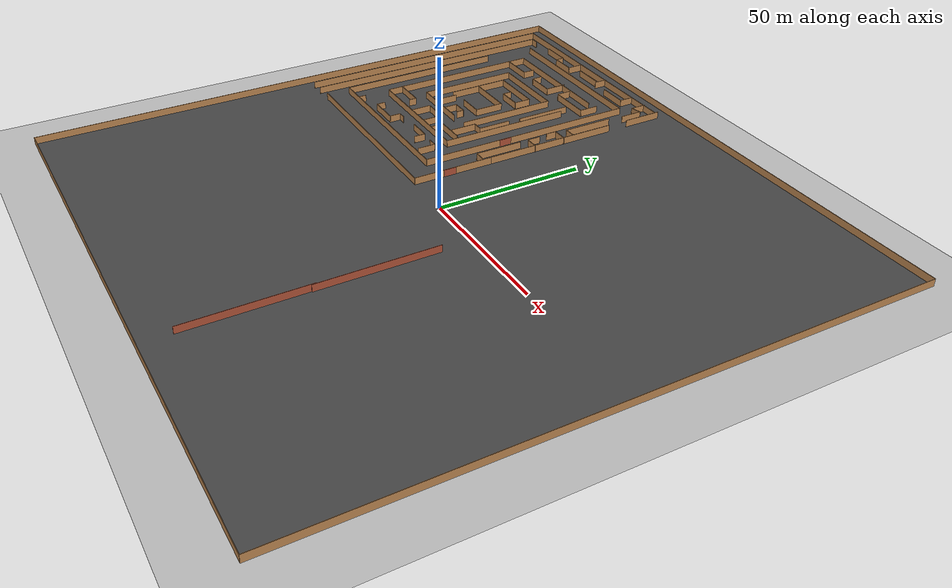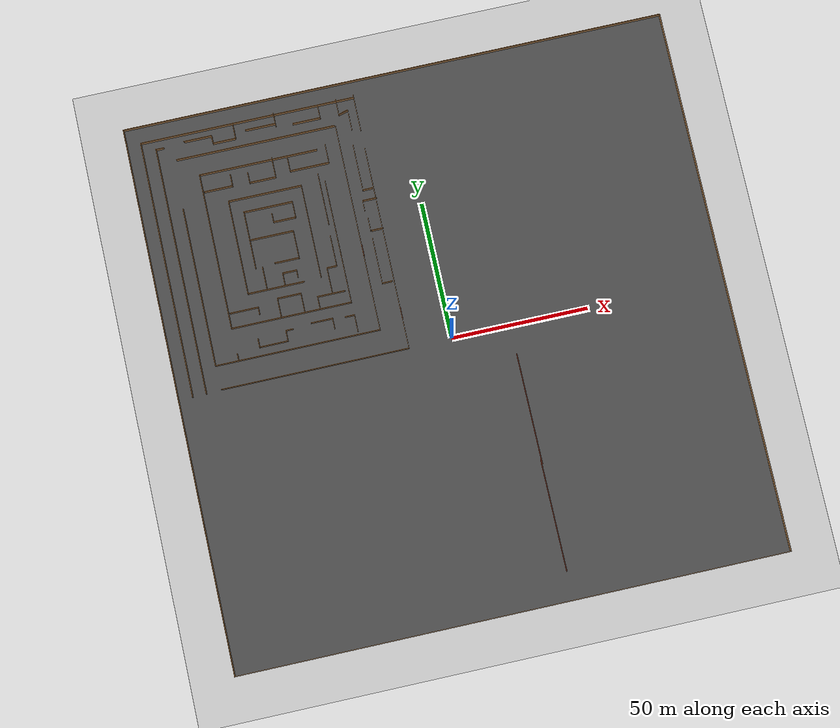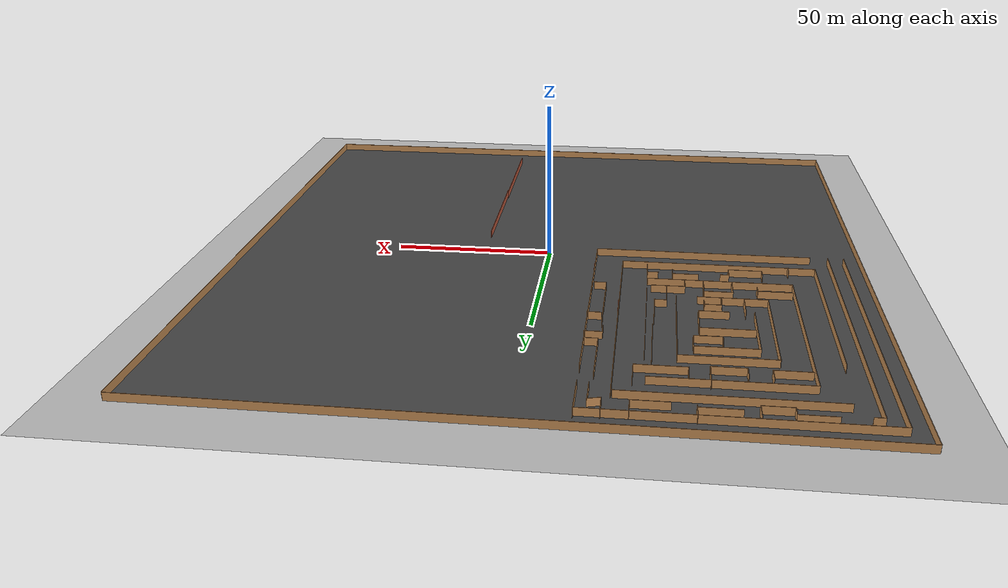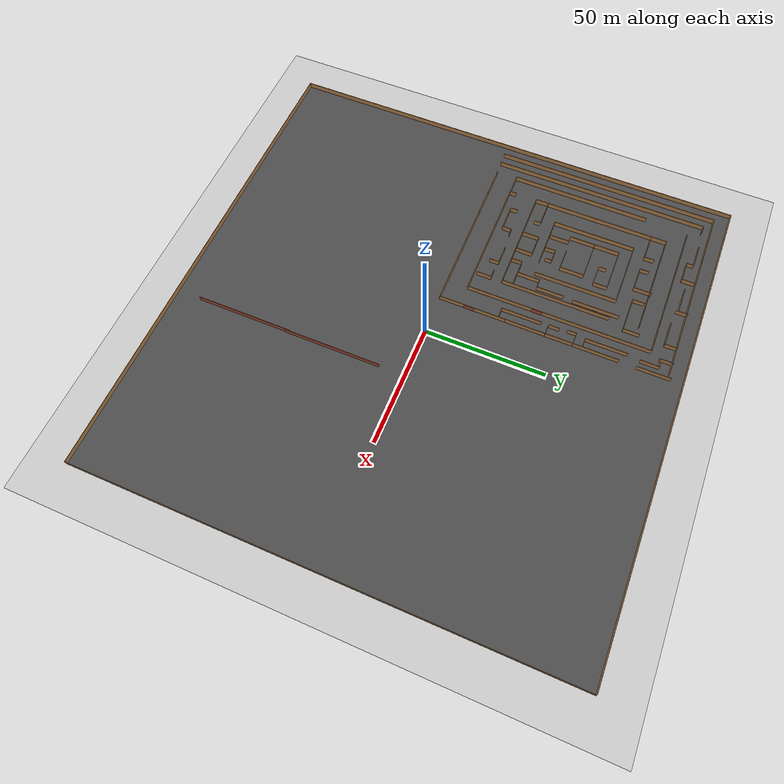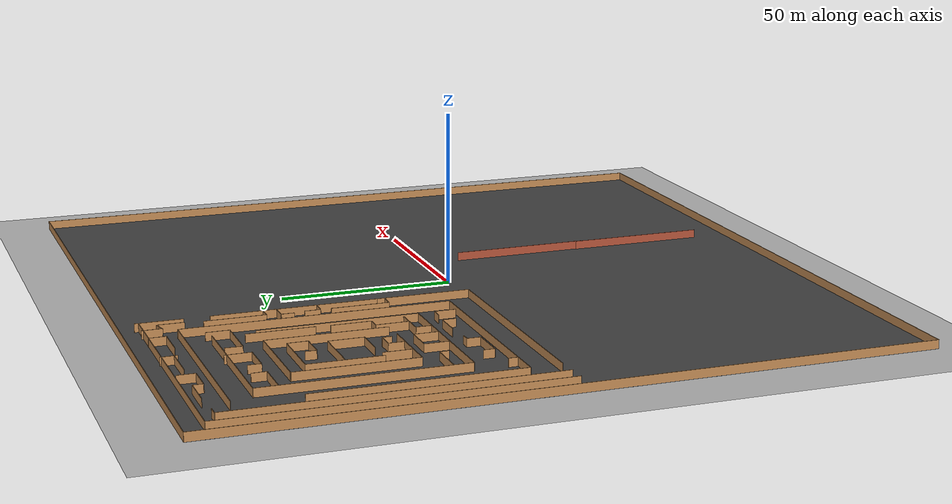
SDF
<sdf version="1.6">
 <world name="default">
  <model name="ground_plane">
   <static>1</static>
   <link name="link">
    <collision name="collision">
     <geometry><plane><normal>0 0 1</normal><size>200 200</size></plane></geometry>
     <surface><friction><ode><mu>100</mu><mu2>50</mu2></ode></friction></surface>
    </collision>
    <visual name="visual">
     <cast_shadows>0</cast_shadows>
     <geometry><plane><normal>0 0 1</normal><size>200 200</size></plane></geometry>
     <material>
      <script><uri>file://media/materials/scripts/gazebo.material</uri><name>Gazebo/Grey</name></script>
     </material>
    </visual>
   </link>
  </model>
  <model name="asphalt_plane">
   <static>1</static>
   <link name="link">
    <collision name="collision"><geometry><box><size>200 200 0.1</size></box></geometry></collision>
    <visual name="visual">
     <cast_shadows>0</cast_shadows>
     <geometry><box><size>200 200 0.1</size></box></geometry>
     <material>
      <script>
       <uri>model://asphalt_plane/materials/scripts</uri>
       <uri>model://asphalt_plane/materials/textures</uri>
       <name>vrc/asphalt</name>
      </script>
     </material>
    </visual>
   </link>
  </model>
  <model name="worlds_1_clone_1_clone">
   <pose>-15.7734 12.3225 0 0 -0 0</pose>
   <link name="Wall_0">
    <collision name="Wall_0_Collision">
     <geometry><box><size>4.25 0.15 2.5</size></box></geometry>
     <pose>0 0 1.25 0 -0 0</pose>
    </collision>
    <visual name="Wall_0_Visual">
     <pose>0 0 1.25 0 -0 0</pose>
     <geometry><box><size>4.25 0.15 2.5</size></box></geometry>
     <material>
      <script><uri>file://media/materials/scripts/gazebo.material</uri><name>Gazebo/Bricks</name></script>
      <ambient>1 1 1 1</ambient>
     </material>
    </visual>
    <pose>0 -0 0 0 -0 1.5708</pose>
   </link>
   <static>1</static>
  </model>
  <model name="longwall_clone_clone_3_clone_1">
   <pose>21.2782 -69.4847 0 0 0 -1.56602</pose>
   <link name="Wall_0">
    <collision name="Wall_0_Collision">
     <geometry><box><size>40.5 0.15 2.5</size></box></geometry>
     <pose>0 0 1.25 0 -0 0</pose>
    </collision>
    <visual name="Wall_0_Visual">
     <pose>0 0 1.25 0 -0 0</pose>
     <geometry><box><size>40.5 0.15 2.5</size></box></geometry>
     <material>
      <script><uri>file://media/materials/scripts/gazebo.material</uri><name>Gazebo/Bricks</name></script>
      <ambient>1 1 1 1</ambient>
     </material>
    </visual>
    <pose>1e-06 0 0 0 -0 0</pose>
   </link>
   <static>1</static>
  </model>
  <model name="longwall_clone_clone_3_clone_1_clone">
   <pose>21.3531 -30.8304 0 0 0 -1.56602</pose>
   <link name="Wall_0">
    <collision name="Wall_0_Collision">
     <geometry><box><size>40.5 0.15 2.5</size></box></geometry>
     <pose>0 0 1.25 0 -0 0</pose>
    </collision>
    <visual name="Wall_0_Visual">
     <pose>0 0 1.25 0 -0 0</pose>
     <geometry><box><size>40.5 0.15 2.5</size></box></geometry>
     <material>
      <script><uri>file://media/materials/scripts/gazebo.material</uri><name>Gazebo/Bricks</name></script>
      <ambient>1 1 1 1</ambient>
     </material>
    </visual>
    <pose>1e-06 0 0 0 -0 0</pose>
   </link>
   <static>1</static>
  </model>
  <model name="worlds_1_clone_1_clone_8_clone">
   <pose>-24.4187 38.1724 0 0 -0 0</pose>
   <link name="Wall_0">
    <collision name="Wall_0_Collision">
     <geometry><box><size>4.25 0.15 2.5</size></box></geometry>
     <pose>0 0 1.25 0 -0 0</pose>
    </collision>
    <visual name="Wall_0_Visual">
     <pose>0 0 1.25 0 -0 0</pose>
     <geometry><box><size>4.25 0.15 2.5</size></box></geometry>
     <material>
      <script><uri>file://media/materials/scripts/gazebo.material</uri><name>Gazebo/Bricks</name></script>
      <ambient>1 1 1 1</ambient>
     </material>
    </visual>
    <pose>0 -0 0 0 -0 1.5708</pose>
   </link>
   <static>1</static>
  </model>
  <model name="BuildingDefaultName">
   <pose>-55.2394 47.1146 0 0 -0 1.5708</pose>
   <link name="Wall_10">
    <collision name="Wall_10_Collision">
     <geometry><box><size>47.5 0.15 2.5</size></box></geometry>
     <pose>0 0 1.25 0 -0 0</pose>
    </collision>
    <visual name="Wall_10_Visual">
     <pose>0 0 1.25 0 -0 0</pose>
     <geometry><box><size>47.5 0.15 2.5</size></box></geometry>
     <material>
      <script><uri>file://media/materials/scripts/gazebo.material</uri><name>Gazebo/Wood</name></script>
      <ambient>1 1 1 1</ambient>
     </material>
    </visual>
    <pose>3.48259 -39.3572 0 0 -0 0</pose>
   </link>
   <link name="Wall_100">
    <collision name="Wall_100_Collision">
     <geometry><box><size>7 0.15 2.5</size></box></geometry>
     <pose>0 0 1.25 0 -0 0</pose>
    </collision>
    <visual name="Wall_100_Visual">
     <pose>0 0 1.25 0 -0 0</pose>
     <geometry><box><size>7 0.15 2.5</size></box></geometry>
     <material>
      <script><uri>file://media/materials/scripts/gazebo.material</uri><name>Gazebo/Wood</name></script>
      <ambient>1 1 1 1</ambient>
     </material>
    </visual>
    <pose>-23.0162 2.8764 0 0 -0 0</pose>
   </link>
   <link name="Wall_101">
    <collision name="Wall_101_Collision">
     <geometry><box><size>8.75 0.15 2.5</size></box></geometry>
     <pose>0 0 1.25 0 -0 0</pose>
    </collision>
    <visual name="Wall_101_Visual">
     <pose>0 0 1.25 0 -0 0</pose>
     <geometry><box><size>8.75 0.15 2.5</size></box></geometry>
     <material>
      <script><uri>file://media/materials/scripts/gazebo.material</uri><name>Gazebo/Wood</name></script>
      <ambient>1 1 1 1</ambient>
     </material>
    </visual>
    <pose>-19.5912 -1.4236 0 0 0 -1.5708</pose>
   </link>
   <link name="Wall_102">
    <collision name="Wall_102_Collision">
     <geometry><box><size>7 0.15 2.5</size></box></geometry>
     <pose>0 0 1.25 0 -0 0</pose>
    </collision>
    <visual name="Wall_102_Visual">
     <pose>0 0 1.25 0 -0 0</pose>
     <geometry><box><size>7 0.15 2.5</size></box></geometry>
     <material>
      <script><uri>file://media/materials/scripts/gazebo.material</uri><name>Gazebo/Wood</name></script>
      <ambient>1 1 1 1</ambient>
     </material>
    </visual>
    <pose>-23.0162 -5.7236 0 0 -0 3.14159</pose>
   </link>
   <link name="Wall_104">
    <collision name="Wall_104_Collision">
     <geometry><box><size>4.5 0.15 2.5</size></box></geometry>
     <pose>0 0 1.25 0 -0 0</pose>
    </collision>
    <visual name="Wall_104_Visual">
     <pose>0 0 1.25 0 -0 0</pose>
     <geometry><box><size>4.5 0.15 2.5</size></box></geometry>
     <material>
      <script><uri>file://media/materials/scripts/gazebo.material</uri><name>Gazebo/Wood</name></script>
      <ambient>1 1 1 1</ambient>
     </material>
    </visual>
    <pose>-24.2662 -11.3117 0 0 -0 0</pose>
   </link>
   <link name="Wall_105">
    <collision name="Wall_105_Collision">
     <geometry><box><size>10.25 0.15 2.5</size></box></geometry>
     <pose>0 0 1.25 0 -0 0</pose>
    </collision>
    <visual name="Wall_105_Visual">
     <pose>0 0 1.25 0 -0 0</pose>
     <geometry><box><size>10.25 0.15 2.5</size></box></geometry>
     <material>
      <script><uri>file://media/materials/scripts/gazebo.material</uri><name>Gazebo/Wood</name></script>
      <ambient>1 1 1 1</ambient>
     </material>
    </visual>
    <pose>-22.0912 -16.3617 0 0 0 -1.5708</pose>
   </link>
   <link name="Wall_107">
    <collision name="Wall_107_Collision">
     <geometry><box><size>9.5 0.15 2.5</size></box></geometry>
     <pose>0 0 1.25 0 -0 0</pose>
    </collision>
    <visual name="Wall_107_Visual">
     <pose>0 0 1.25 0 -0 0</pose>
     <geometry><box><size>9.5 0.15 2.5</size></box></geometry>
     <material>
      <script><uri>file://media/materials/scripts/gazebo.material</uri><name>Gazebo/Wood</name></script>
      <ambient>1 1 1 1</ambient>
     </material>
    </visual>
    <pose>-17.2857 -16.7879 0 0 -0 0</pose>
   </link>
   <link name="Wall_108">
    <collision name="Wall_108_Collision">
     <geometry><box><size>3.75 0.15 2.5</size></box></geometry>
     <pose>0 0 1.25 0 -0 0</pose>
    </collision>
    <visual name="Wall_108_Visual">
     <pose>0 0 1.25 0 -0 0</pose>
     <geometry><box><size>3.75 0.15 2.5</size></box></geometry>
     <material>
      <script><uri>file://media/materials/scripts/gazebo.material</uri><name>Gazebo/Wood</name></script>
      <ambient>1 1 1 1</ambient>
     </material>
    </visual>
    <pose>-12.6107 -18.5879 0 0 0 -1.5708</pose>
   </link>
   <link name="Wall_109">
    <collision name="Wall_109_Collision">
     <geometry><box><size>11.5 0.15 2.5</size></box></geometry>
     <pose>0 0 1.25 0 -0 0</pose>
    </collision>
    <visual name="Wall_109_Visual">
     <pose>0 0 1.25 0 -0 0</pose>
     <geometry><box><size>11.5 0.15 2.5</size></box></geometry>
     <material>
      <script><uri>file://media/materials/scripts/gazebo.material</uri><name>Gazebo/Wood</name></script>
      <ambient>1 1 1 1</ambient>
     </material>
    </visual>
    <pose>-6.93569 -20.3879 0 0 -0 0</pose>
   </link>
   <link name="Wall_111">
    <collision name="Wall_111_Collision">
     <geometry><box><size>19.25 0.15 2.5</size></box></geometry>
     <pose>0 0 1.25 0 -0 0</pose>
    </collision>
    <visual name="Wall_111_Visual">
     <pose>0 0 1.25 0 -0 0</pose>
     <geometry><box><size>19.25 0.15 2.5</size></box></geometry>
     <material>
      <script><uri>file://media/materials/scripts/gazebo.material</uri><name>Gazebo/Wood</name></script>
      <ambient>1 1 1 1</ambient>
     </material>
    </visual>
    <pose>12.4808 -20.7705 0 0 -0 0</pose>
   </link>
   <link name="Wall_113">
    <collision name="Wall_113_Collision">
     <geometry><box><size>5.75 0.15 2.5</size></box></geometry>
     <pose>0 0 1.25 0 -0 0</pose>
    </collision>
    <visual name="Wall_113_Visual">
     <pose>0 0 1.25 0 -0 0</pose>
     <geometry><box><size>5.75 0.15 2.5</size></box></geometry>
     <material>
      <script><uri>file://media/materials/scripts/gazebo.material</uri><name>Gazebo/Wood</name></script>
      <ambient>1 1 1 1</ambient>
     </material>
    </visual>
    <pose>44.4434 -32.778 0 0 -0 3.14159</pose>
   </link>
   <link name="Wall_114">
    <collision name="Wall_114_Collision">
     <geometry><box><size>3.75 0.15 2.5</size></box></geometry>
     <pose>0 0 1.25 0 -0 0</pose>
    </collision>
    <visual name="Wall_114_Visual">
     <pose>0 0 1.25 0 -0 0</pose>
     <geometry><box><size>3.75 0.15 2.5</size></box></geometry>
     <material>
      <script><uri>file://media/materials/scripts/gazebo.material</uri><name>Gazebo/Wood</name></script>
      <ambient>1 1 1 1</ambient>
     </material>
    </visual>
    <pose>42.1093 -34.5166 0 0 0 -1.309</pose>
   </link>
   <link name="Wall_115">
    <collision name="Wall_115_Collision">
     <geometry><box><size>7.75 0.15 2.5</size></box></geometry>
     <pose>0 0 1.25 0 -0 0</pose>
    </collision>
    <visual name="Wall_115_Visual">
     <pose>0 0 1.25 0 -0 0</pose>
     <geometry><box><size>7.75 0.15 2.5</size></box></geometry>
     <material>
      <script><uri>file://media/materials/scripts/gazebo.material</uri><name>Gazebo/Wood</name></script>
      <ambient>1 1 1 1</ambient>
     </material>
    </visual>
    <pose>38.7752 -36.2553 0 0 -0 3.14159</pose>
   </link>
   <link name="Wall_117">
    <collision name="Wall_117_Collision">
     <geometry><box><size>17.5 0.15 2.5</size></box></geometry>
     <pose>0 0 1.25 0 -0 0</pose>
    </collision>
    <visual name="Wall_117_Visual">
     <pose>0 0 1.25 0 -0 0</pose>
     <geometry><box><size>17.5 0.15 2.5</size></box></geometry>
     <material>
      <script><uri>file://media/materials/scripts/gazebo.material</uri><name>Gazebo/Wood</name></script>
      <ambient>1 1 1 1</ambient>
     </material>
    </visual>
    <pose>21.1543 -35.4279 0 0 -0 3.14159</pose>
   </link>
   <link name="Wall_118">
    <collision name="Wall_118_Collision">
     <geometry><box><size>3.75 0.15 2.5</size></box></geometry>
     <pose>0 0 1.25 0 -0 0</pose>
    </collision>
    <visual name="Wall_118_Visual">
     <pose>0 0 1.25 0 -0 0</pose>
     <geometry><box><size>3.75 0.15 2.5</size></box></geometry>
     <material>
      <script><uri>file://media/materials/scripts/gazebo.material</uri><name>Gazebo/Wood</name></script>
      <ambient>1 1 1 1</ambient>
     </material>
    </visual>
    <pose>12.4793 -37.2279 0 0 0 -1.5708</pose>
   </link>
   <link name="Wall_12">
    <collision name="Wall_12_Collision">
     <geometry><box><size>13.5 0.15 2.5</size></box></geometry>
     <pose>0 0 1.25 0 -0 0</pose>
    </collision>
    <visual name="Wall_12_Visual">
     <pose>0 0 1.25 0 -0 0</pose>
     <geometry><box><size>13.5 0.15 2.5</size></box></geometry>
     <material>
      <script><uri>file://media/materials/scripts/gazebo.material</uri><name>Gazebo/Wood</name></script>
      <ambient>1 1 1 1</ambient>
     </material>
    </visual>
    <pose>41.1826 -39.3572 0 0 -0 0</pose>
   </link>
   <link name="Wall_121">
    <collision name="Wall_121_Collision">
     <geometry><box><size>5.25 0.15 2.5</size></box></geometry>
     <pose>0 0 1.25 0 -0 0</pose>
    </collision>
    <visual name="Wall_121_Visual">
     <pose>0 0 1.25 0 -0 0</pose>
     <geometry><box><size>5.25 0.15 2.5</size></box></geometry>
     <material>
      <script><uri>file://media/materials/scripts/gazebo.material</uri><name>Gazebo/Wood</name></script>
      <ambient>1 1 1 1</ambient>
     </material>
    </visual>
    <pose>8.62951 -37.0422 0 0 -0 1.5708</pose>
   </link>
   <link name="Wall_122">
    <collision name="Wall_122_Collision">
     <geometry><box><size>3.75 0.15 2.5</size></box></geometry>
     <pose>0 0 1.25 0 -0 0</pose>
    </collision>
    <visual name="Wall_122_Visual">
     <pose>0 0 1.25 0 -0 0</pose>
     <geometry><box><size>3.75 0.15 2.5</size></box></geometry>
     <material>
      <script><uri>file://media/materials/scripts/gazebo.material</uri><name>Gazebo/Wood</name></script>
      <ambient>1 1 1 1</ambient>
     </material>
    </visual>
    <pose>6.82951 -34.4922 0 0 -0 3.14159</pose>
   </link>
   <link name="Wall_124">
    <collision name="Wall_124_Collision">
     <geometry><box><size>4.5 0.15 2.5</size></box></geometry>
     <pose>0 0 1.25 0 -0 0</pose>
    </collision>
    <visual name="Wall_124_Visual">
     <pose>0 0 1.25 0 -0 0</pose>
     <geometry><box><size>4.5 0.15 2.5</size></box></geometry>
     <material>
      <script><uri>file://media/materials/scripts/gazebo.material</uri><name>Gazebo/Wood</name></script>
      <ambient>1 1 1 1</ambient>
     </material>
    </visual>
    <pose>-0.359709 -35.0494 0 0 -0 3.14159</pose>
   </link>
   <link name="Wall_127">
    <collision name="Wall_127_Collision">
     <geometry><box><size>4.25 0.15 2.5</size></box></geometry>
     <pose>0 0 1.25 0 -0 0</pose>
    </collision>
    <visual name="Wall_127_Visual">
     <pose>0 0 1.25 0 -0 0</pose>
     <geometry><box><size>4.25 0.15 2.5</size></box></geometry>
     <material>
      <script><uri>file://media/materials/scripts/gazebo.material</uri><name>Gazebo/Wood</name></script>
      <ambient>1 1 1 1</ambient>
     </material>
    </visual>
    <pose>-2.72752 -37.4779 0 0 0 -1.5708</pose>
   </link>
   <link name="Wall_130">
    <collision name="Wall_130_Collision">
     <geometry><box><size>16.75 0.15 2.5</size></box></geometry>
     <pose>0 0 1.25 0 -0 0</pose>
    </collision>
    <visual name="Wall_130_Visual">
     <pose>0 0 1.25 0 -0 0</pose>
     <geometry><box><size>16.75 0.15 2.5</size></box></geometry>
     <material>
      <script><uri>file://media/materials/scripts/gazebo.material</uri><name>Gazebo/Wood</name></script>
      <ambient>1 1 1 1</ambient>
     </material>
    </visual>
    <pose>-14.0561 -35.0494 0 0 -0 3.14159</pose>
   </link>
   <link name="Wall_131">
    <collision name="Wall_131_Collision">
     <geometry><box><size>3.75 0.15 2.5</size></box></geometry>
     <pose>0 0 1.25 0 -0 0</pose>
    </collision>
    <visual name="Wall_131_Visual">
     <pose>0 0 1.25 0 -0 0</pose>
     <geometry><box><size>3.75 0.15 2.5</size></box></geometry>
     <material>
      <script><uri>file://media/materials/scripts/gazebo.material</uri><name>Gazebo/Wood</name></script>
      <ambient>1 1 1 1</ambient>
     </material>
    </visual>
    <pose>-22.3561 -36.8494 0 0 0 -1.5708</pose>
   </link>
   <link name="Wall_133">
    <collision name="Wall_133_Collision">
     <geometry><box><size>91.25 0.15 2.5</size></box></geometry>
     <pose>0 0 1.25 0 -0 0</pose>
    </collision>
    <visual name="Wall_133_Visual">
     <pose>0 0 1.25 0 -0 0</pose>
     <geometry><box><size>91.25 0.15 2.5</size></box></geometry>
     <material>
      <script><uri>file://media/materials/scripts/gazebo.material</uri><name>Gazebo/Wood</name></script>
      <ambient>1 1 1 1</ambient>
     </material>
    </visual>
    <pose>-2.22711 34.6071 0 0 -0 0</pose>
   </link>
   <link name="Wall_134">
    <collision name="Wall_134_Collision">
     <geometry><box><size>3 0.15 2.5</size></box></geometry>
     <pose>0 0 1.25 0 -0 0</pose>
    </collision>
    <visual name="Wall_134_Visual">
     <pose>0 0 1.25 0 -0 0</pose>
     <geometry><box><size>3 0.15 2.5</size></box></geometry>
     <material>
      <script><uri>file://media/materials/scripts/gazebo.material</uri><name>Gazebo/Wood</name></script>
      <ambient>1 1 1 1</ambient>
     </material>
    </visual>
    <pose>43.3229 33.1821 0 0 0 -1.5708</pose>
   </link>
   <link name="Wall_14">
    <collision name="Wall_14_Collision">
     <geometry><box><size>28 0.15 2.5</size></box></geometry>
     <pose>0 0 1.25 0 -0 0</pose>
    </collision>
    <visual name="Wall_14_Visual">
     <pose>0 0 1.25 0 -0 0</pose>
     <geometry><box><size>28 0.15 2.5</size></box></geometry>
     <material>
      <script><uri>file://media/materials/scripts/gazebo.material</uri><name>Gazebo/Wood</name></script>
      <ambient>1 1 1 1</ambient>
     </material>
    </visual>
    <pose>-33.4681 -39.3572 0 0 -0 3.14159</pose>
   </link>
   <link name="Wall_15">
    <collision name="Wall_15_Collision">
     <geometry><box><size>68.5 0.15 2.5</size></box></geometry>
     <pose>0 0 1.25 0 -0 0</pose>
    </collision>
    <visual name="Wall_15_Visual">
     <pose>0 0 1.25 0 -0 0</pose>
     <geometry><box><size>68.5 0.15 2.5</size></box></geometry>
     <material>
      <script><uri>file://media/materials/scripts/gazebo.material</uri><name>Gazebo/Wood</name></script>
      <ambient>1 1 1 1</ambient>
     </material>
    </visual>
    <pose>-47.3931 -5.18218 0 0 -0 1.5708</pose>
   </link>
   <link name="Wall_18">
    <collision name="Wall_18_Collision">
     <geometry><box><size>94.75 0.15 2.5</size></box></geometry>
     <pose>0 0 1.25 0 -0 0</pose>
    </collision>
    <visual name="Wall_18_Visual">
     <pose>0 0 1.25 0 -0 0</pose>
     <geometry><box><size>94.75 0.15 2.5</size></box></geometry>
     <material>
      <script><uri>file://media/materials/scripts/gazebo.material</uri><name>Gazebo/Wood</name></script>
      <ambient>1 1 1 1</ambient>
     </material>
    </visual>
    <pose>-0.557591 39.5922 0 0 -0 0</pose>
   </link>
   <link name="Wall_19">
    <collision name="Wall_19_Collision">
     <geometry><box><size>79 0.15 2.5</size></box></geometry>
     <pose>0 0 1.25 0 -0 0</pose>
    </collision>
    <visual name="Wall_19_Visual">
     <pose>0 0 1.25 0 -0 0</pose>
     <geometry><box><size>79 0.15 2.5</size></box></geometry>
     <material>
      <script><uri>file://media/materials/scripts/gazebo.material</uri><name>Gazebo/Wood</name></script>
      <ambient>1 1 1 1</ambient>
     </material>
    </visual>
    <pose>46.7424 0.167188 0 0 0 -1.5708</pose>
   </link>
   <link name="Wall_21">
    <collision name="Wall_21_Collision">
     <geometry><box><size>34.5 0.15 2.5</size></box></geometry>
     <pose>0 0 1.25 0 -0 0</pose>
    </collision>
    <visual name="Wall_21_Visual">
     <pose>0 0 1.25 0 -0 0</pose>
     <geometry><box><size>34.5 0.15 2.5</size></box></geometry>
     <material>
      <script><uri>file://media/materials/scripts/gazebo.material</uri><name>Gazebo/Wood</name></script>
      <ambient>1 1 1 1</ambient>
     </material>
    </visual>
    <pose>1.77247 -14.0276 0 0 -0 0</pose>
   </link>
   <link name="Wall_22">
    <collision name="Wall_22_Collision">
     <geometry><box><size>27 0.15 2.5</size></box></geometry>
     <pose>0 0 1.25 0 -0 0</pose>
    </collision>
    <visual name="Wall_22_Visual">
     <pose>0 0 1.25 0 -0 0</pose>
     <geometry><box><size>27 0.15 2.5</size></box></geometry>
     <material>
      <script><uri>file://media/materials/scripts/gazebo.material</uri><name>Gazebo/Wood</name></script>
      <ambient>1 1 1 1</ambient>
     </material>
    </visual>
    <pose>18.9475 -0.602588 0 0 -0 1.5708</pose>
   </link>
   <link name="Wall_23">
    <collision name="Wall_23_Collision">
     <geometry><box><size>34.75 0.15 2.5</size></box></geometry>
     <pose>0 0 1.25 0 -0 0</pose>
    </collision>
    <visual name="Wall_23_Visual">
     <pose>0 0 1.25 0 -0 0</pose>
     <geometry><box><size>34.75 0.15 2.5</size></box></geometry>
     <material>
      <script><uri>file://media/materials/scripts/gazebo.material</uri><name>Gazebo/Wood</name></script>
      <ambient>1 1 1 1</ambient>
     </material>
    </visual>
    <pose>1.64747 12.8224 0 0 -0 3.14159</pose>
   </link>
   <link name="Wall_24">
    <collision name="Wall_24_Collision">
     <geometry><box><size>20.75 0.15 2.5</size></box></geometry>
     <pose>0 0 1.25 0 -0 0</pose>
    </collision>
    <visual name="Wall_24_Visual">
     <pose>0 0 1.25 0 -0 0</pose>
     <geometry><box><size>20.75 0.15 2.5</size></box></geometry>
     <material>
      <script><uri>file://media/materials/scripts/gazebo.material</uri><name>Gazebo/Wood</name></script>
      <ambient>1 1 1 1</ambient>
     </material>
    </visual>
    <pose>-15.6525 2.52241 0 0 0 -1.5708</pose>
   </link>
   <link name="Wall_26">
    <collision name="Wall_26_Collision">
     <geometry><box><size>45.5 0.15 2.5</size></box></geometry>
     <pose>0 0 1.25 0 -0 0</pose>
    </collision>
    <visual name="Wall_26_Visual">
     <pose>0 0 1.25 0 -0 0</pose>
     <geometry><box><size>45.5 0.15 2.5</size></box></geometry>
     <material>
      <script><uri>file://media/materials/scripts/gazebo.material</uri><name>Gazebo/Wood</name></script>
      <ambient>1 1 1 1</ambient>
     </material>
    </visual>
    <pose>-4.00641 -22.7347 0 0 -0 3.14159</pose>
   </link>
   <link name="Wall_27">
    <collision name="Wall_27_Collision">
     <geometry><box><size>44 0.15 2.5</size></box></geometry>
     <pose>0 0 1.25 0 -0 0</pose>
    </collision>
    <visual name="Wall_27_Visual">
     <pose>0 0 1.25 0 -0 0</pose>
     <geometry><box><size>44 0.15 2.5</size></box></geometry>
     <material>
      <script><uri>file://media/materials/scripts/gazebo.material</uri><name>Gazebo/Wood</name></script>
      <ambient>1 1 1 1</ambient>
     </material>
    </visual>
    <pose>-26.6814 -0.809651 0 0 -0 1.5708</pose>
   </link>
   <link name="Wall_28">
    <collision name="Wall_28_Collision">
     <geometry><box><size>57.5 0.15 2.5</size></box></geometry>
     <pose>0 0 1.25 0 -0 0</pose>
    </collision>
    <visual name="Wall_28_Visual">
     <pose>0 0 1.25 0 -0 0</pose>
     <geometry><box><size>57.5 0.15 2.5</size></box></geometry>
     <material>
      <script><uri>file://media/materials/scripts/gazebo.material</uri><name>Gazebo/Wood</name></script>
      <ambient>1 1 1 1</ambient>
     </material>
    </visual>
    <pose>1.99358 21.1153 0 0 -0 0</pose>
   </link>
   <link name="Wall_29">
    <collision name="Wall_29_Collision">
     <geometry><box><size>43.5 0.15 2.5</size></box></geometry>
     <pose>0 0 1.25 0 -0 0</pose>
    </collision>
    <visual name="Wall_29_Visual">
     <pose>0 0 1.25 0 -0 0</pose>
     <geometry><box><size>43.5 0.15 2.5</size></box></geometry>
     <material>
      <script><uri>file://media/materials/scripts/gazebo.material</uri><name>Gazebo/Wood</name></script>
      <ambient>1 1 1 1</ambient>
     </material>
    </visual>
    <pose>30.6686 -0.559651 0 0 0 -1.5708</pose>
   </link>
   <link name="Wall_31">
    <collision name="Wall_31_Collision">
     <geometry><box><size>76.75 0.15 2.5</size></box></geometry>
     <pose>0 0 1.25 0 -0 0</pose>
    </collision>
    <visual name="Wall_31_Visual">
     <pose>0 0 1.25 0 -0 0</pose>
     <geometry><box><size>76.75 0.15 2.5</size></box></geometry>
     <material>
      <script><uri>file://media/materials/scripts/gazebo.material</uri><name>Gazebo/Wood</name></script>
      <ambient>1 1 1 1</ambient>
     </material>
    </visual>
    <pose>-0.324449 -30.6846 0 0 -0 3.14159</pose>
   </link>
   <link name="Wall_32">
    <collision name="Wall_32_Collision">
     <geometry><box><size>60.25 0.15 2.5</size></box></geometry>
     <pose>0 0 1.25 0 -0 0</pose>
    </collision>
    <visual name="Wall_32_Visual">
     <pose>0 0 1.25 0 -0 0</pose>
     <geometry><box><size>60.25 0.15 2.5</size></box></geometry>
     <material>
      <script><uri>file://media/materials/scripts/gazebo.material</uri><name>Gazebo/Wood</name></script>
      <ambient>1 1 1 1</ambient>
     </material>
    </visual>
    <pose>-38.6244 -0.634578 0 0 -0 1.5708</pose>
   </link>
   <link name="Wall_33">
    <collision name="Wall_33_Collision">
     <geometry><box><size>58.5 0.15 2.5</size></box></geometry>
     <pose>0 0 1.25 0 -0 0</pose>
    </collision>
    <visual name="Wall_33_Visual">
     <pose>0 0 1.25 0 -0 0</pose>
     <geometry><box><size>58.5 0.15 2.5</size></box></geometry>
     <material>
      <script><uri>file://media/materials/scripts/gazebo.material</uri><name>Gazebo/Wood</name></script>
      <ambient>1 1 1 1</ambient>
     </material>
    </visual>
    <pose>-9.44945 29.4154 0 0 -0 0</pose>
   </link>
   <link name="Wall_36">
    <collision name="Wall_36_Collision">
     <geometry><box><size>58.5 0.15 2.5</size></box></geometry>
     <pose>0 0 1.25 0 -0 0</pose>
    </collision>
    <visual name="Wall_36_Visual">
     <pose>0 0 1.25 0 -0 0</pose>
     <geometry><box><size>58.5 0.15 2.5</size></box></geometry>
     <material>
      <script><uri>file://media/materials/scripts/gazebo.material</uri><name>Gazebo/Wood</name></script>
      <ambient>1 1 1 1</ambient>
     </material>
    </visual>
    <pose>37.9755 -1.13101 0 0 -0 1.5708</pose>
   </link>
   <link name="Wall_38">
    <collision name="Wall_38_Collision">
     <geometry><box><size>8 0.15 2.5</size></box></geometry>
     <pose>0 0 1.25 0 -0 0</pose>
    </collision>
    <visual name="Wall_38_Visual">
     <pose>0 0 1.25 0 -0 0</pose>
     <geometry><box><size>8 0.15 2.5</size></box></geometry>
     <material>
      <script><uri>file://media/materials/scripts/gazebo.material</uri><name>Gazebo/Wood</name></script>
      <ambient>1 1 1 1</ambient>
     </material>
    </visual>
    <pose>-11.2696 5.78374 0 0 -0 0</pose>
   </link>
   <link name="Wall_40">
    <collision name="Wall_40_Collision">
     <geometry><box><size>21.25 0.15 2.5</size></box></geometry>
     <pose>0 0 1.25 0 -0 0</pose>
    </collision>
    <visual name="Wall_40_Visual">
     <pose>0 0 1.25 0 -0 0</pose>
     <geometry><box><size>21.25 0.15 2.5</size></box></geometry>
     <material>
      <script><uri>file://media/materials/scripts/gazebo.material</uri><name>Gazebo/Wood</name></script>
      <ambient>1 1 1 1</ambient>
     </material>
    </visual>
    <pose>3.30431 8.21804 0 0 -0 0</pose>
   </link>
   <link name="Wall_41">
    <collision name="Wall_41_Collision">
     <geometry><box><size>18 0.15 2.5</size></box></geometry>
     <pose>0 0 1.25 0 -0 0</pose>
    </collision>
    <visual name="Wall_41_Visual">
     <pose>0 0 1.25 0 -0 0</pose>
     <geometry><box><size>18 0.15 2.5</size></box></geometry>
     <material>
      <script><uri>file://media/materials/scripts/gazebo.material</uri><name>Gazebo/Wood</name></script>
      <ambient>1 1 1 1</ambient>
     </material>
    </visual>
    <pose>13.8543 -0.70696 0 0 0 -1.5708</pose>
   </link>
   <link name="Wall_42">
    <collision name="Wall_42_Collision">
     <geometry><box><size>6 0.15 2.5</size></box></geometry>
     <pose>0 0 1.25 0 -0 0</pose>
    </collision>
    <visual name="Wall_42_Visual">
     <pose>0 0 1.25 0 -0 0</pose>
     <geometry><box><size>6 0.15 2.5</size></box></geometry>
     <material>
      <script><uri>file://media/materials/scripts/gazebo.material</uri><name>Gazebo/Wood</name></script>
      <ambient>1 1 1 1</ambient>
     </material>
    </visual>
    <pose>10.9293 -9.63196 0 0 -0 3.14159</pose>
   </link>
   <link name="Wall_43">
    <collision name="Wall_43_Collision">
     <geometry><box><size>8.25 0.15 2.5</size></box></geometry>
     <pose>0 0 1.25 0 -0 0</pose>
    </collision>
    <visual name="Wall_43_Visual">
     <pose>0 0 1.25 0 -0 0</pose>
     <geometry><box><size>8.25 0.15 2.5</size></box></geometry>
     <material>
      <script><uri>file://media/materials/scripts/gazebo.material</uri><name>Gazebo/Wood</name></script>
      <ambient>1 1 1 1</ambient>
     </material>
    </visual>
    <pose>8.00431 -5.58196 0 0 -0 1.5708</pose>
   </link>
   <link name="Wall_44">
    <collision name="Wall_44_Collision">
     <geometry><box><size>3.25 0.15 2.5</size></box></geometry>
     <pose>0 0 1.25 0 -0 0</pose>
    </collision>
    <visual name="Wall_44_Visual">
     <pose>0 0 1.25 0 -0 0</pose>
     <geometry><box><size>3.25 0.15 2.5</size></box></geometry>
     <material>
      <script><uri>file://media/materials/scripts/gazebo.material</uri><name>Gazebo/Wood</name></script>
      <ambient>1 1 1 1</ambient>
     </material>
    </visual>
    <pose>9.55431 -1.53196 0 0 -0 0</pose>
   </link>
   <link name="Wall_46">
    <collision name="Wall_46_Collision">
     <geometry><box><size>15.75 0.15 2.5</size></box></geometry>
     <pose>0 0 1.25 0 -0 0</pose>
    </collision>
    <visual name="Wall_46_Visual">
     <pose>0 0 1.25 0 -0 0</pose>
     <geometry><box><size>15.75 0.15 2.5</size></box></geometry>
     <material>
      <script><uri>file://media/materials/scripts/gazebo.material</uri><name>Gazebo/Wood</name></script>
      <ambient>1 1 1 1</ambient>
     </material>
    </visual>
    <pose>3.32366 0.01403 0 0 0 -1.5708</pose>
   </link>
   <link name="Wall_47">
    <collision name="Wall_47_Collision">
     <geometry><box><size>10.25 0.15 2.5</size></box></geometry>
     <pose>0 0 1.25 0 -0 0</pose>
    </collision>
    <visual name="Wall_47_Visual">
     <pose>0 0 1.25 0 -0 0</pose>
     <geometry><box><size>10.25 0.15 2.5</size></box></geometry>
     <material>
      <script><uri>file://media/materials/scripts/gazebo.material</uri><name>Gazebo/Wood</name></script>
      <ambient>1 1 1 1</ambient>
     </material>
    </visual>
    <pose>-1.72634 -7.78597 0 0 -0 3.14159</pose>
   </link>
   <link name="Wall_48">
    <collision name="Wall_48_Collision">
     <geometry><box><size>9 0.15 2.5</size></box></geometry>
     <pose>0 0 1.25 0 -0 0</pose>
    </collision>
    <visual name="Wall_48_Visual">
     <pose>0 0 1.25 0 -0 0</pose>
     <geometry><box><size>9 0.15 2.5</size></box></geometry>
     <material>
      <script><uri>file://media/materials/scripts/gazebo.material</uri><name>Gazebo/Wood</name></script>
      <ambient>1 1 1 1</ambient>
     </material>
    </visual>
    <pose>-6.77634 -3.36097 0 0 -0 1.5708</pose>
   </link>
   <link name="Wall_50">
    <collision name="Wall_50_Collision">
     <geometry><box><size>4.5 0.15 2.5</size></box></geometry>
     <pose>0 0 1.25 0 -0 0</pose>
    </collision>
    <visual name="Wall_50_Visual">
     <pose>0 0 1.25 0 -0 0</pose>
     <geometry><box><size>4.5 0.15 2.5</size></box></geometry>
     <material>
      <script><uri>file://media/materials/scripts/gazebo.material</uri><name>Gazebo/Wood</name></script>
      <ambient>1 1 1 1</ambient>
     </material>
    </visual>
    <pose>-13.1698 -0.841406 0 0 -0 0</pose>
   </link>
   <link name="Wall_51">
    <collision name="Wall_51_Collision">
     <geometry><box><size>5.25 0.15 2.5</size></box></geometry>
     <pose>0 0 1.25 0 -0 0</pose>
    </collision>
    <visual name="Wall_51_Visual">
     <pose>0 0 1.25 0 -0 0</pose>
     <geometry><box><size>5.25 0.15 2.5</size></box></geometry>
     <material>
      <script><uri>file://media/materials/scripts/gazebo.material</uri><name>Gazebo/Wood</name></script>
      <ambient>1 1 1 1</ambient>
     </material>
    </visual>
    <pose>-10.9948 -3.39141 0 0 0 -1.5708</pose>
   </link>
   <link name="Wall_52">
    <collision name="Wall_52_Collision">
     <geometry><box><size>2.75 0.15 2.5</size></box></geometry>
     <pose>0 0 1.25 0 -0 0</pose>
    </collision>
    <visual name="Wall_52_Visual">
     <pose>0 0 1.25 0 -0 0</pose>
     <geometry><box><size>2.75 0.15 2.5</size></box></geometry>
     <material>
      <script><uri>file://media/materials/scripts/gazebo.material</uri><name>Gazebo/Wood</name></script>
      <ambient>1 1 1 1</ambient>
     </material>
    </visual>
    <pose>-12.2948 -5.94141 0 0 -0 3.14159</pose>
   </link>
   <link name="Wall_54">
    <collision name="Wall_54_Collision">
     <geometry><box><size>2.5 0.15 2.5</size></box></geometry>
     <pose>0 0 1.25 0 -0 0</pose>
    </collision>
    <visual name="Wall_54_Visual">
     <pose>0 0 1.25 0 -0 0</pose>
     <geometry><box><size>2.5 0.15 2.5</size></box></geometry>
     <material>
      <script><uri>file://media/materials/scripts/gazebo.material</uri><name>Gazebo/Wood</name></script>
      <ambient>1 1 1 1</ambient>
     </material>
    </visual>
    <pose>-37.195 20.957 0 0 -0 0</pose>
   </link>
   <link name="Wall_58">
    <collision name="Wall_58_Collision">
     <geometry><box><size>3.25 0.15 2.5</size></box></geometry>
     <pose>0 0 1.25 0 -0 0</pose>
    </collision>
    <visual name="Wall_58_Visual">
     <pose>0 0 1.25 0 -0 0</pose>
     <geometry><box><size>3.25 0.15 2.5</size></box></geometry>
     <material>
      <script><uri>file://media/materials/scripts/gazebo.material</uri><name>Gazebo/Wood</name></script>
      <ambient>1 1 1 1</ambient>
     </material>
    </visual>
    <pose>-33.9087 12.6557 0 0 -0 3.14159</pose>
   </link>
   <link name="Wall_59">
    <collision name="Wall_59_Collision">
     <geometry><box><size>10.5 0.15 2.5</size></box></geometry>
     <pose>0 0 1.25 0 -0 0</pose>
    </collision>
    <visual name="Wall_59_Visual">
     <pose>0 0 1.25 0 -0 0</pose>
     <geometry><box><size>10.5 0.15 2.5</size></box></geometry>
     <material>
      <script><uri>file://media/materials/scripts/gazebo.material</uri><name>Gazebo/Wood</name></script>
      <ambient>1 1 1 1</ambient>
     </material>
    </visual>
    <pose>-35.4587 7.48069 0 0 0 -1.5708</pose>
   </link>
   <link name="Wall_60">
    <collision name="Wall_60_Collision">
     <geometry><box><size>4 0.15 2.5</size></box></geometry>
     <pose>0 0 1.25 0 -0 0</pose>
    </collision>
    <visual name="Wall_60_Visual">
     <pose>0 0 1.25 0 -0 0</pose>
     <geometry><box><size>4 0.15 2.5</size></box></geometry>
     <material>
      <script><uri>file://media/materials/scripts/gazebo.material</uri><name>Gazebo/Wood</name></script>
      <ambient>1 1 1 1</ambient>
     </material>
    </visual>
    <pose>-33.5337 2.30569 0 0 -0 0</pose>
   </link>
   <link name="Wall_61">
    <collision name="Wall_61_Collision">
     <geometry><box><size>2.75 0.15 2.5</size></box></geometry>
     <pose>0 0 1.25 0 -0 0</pose>
    </collision>
    <visual name="Wall_61_Visual">
     <pose>0 0 1.25 0 -0 0</pose>
     <geometry><box><size>2.75 0.15 2.5</size></box></geometry>
     <material>
      <script><uri>file://media/materials/scripts/gazebo.material</uri><name>Gazebo/Wood</name></script>
      <ambient>1 1 1 1</ambient>
     </material>
    </visual>
    <pose>-31.6087 1.00569 0 0 0 -1.5708</pose>
   </link>
   <link name="Wall_63">
    <collision name="Wall_63_Collision">
     <geometry><box><size>8 0.15 2.5</size></box></geometry>
     <pose>0 0 1.25 0 -0 0</pose>
    </collision>
    <visual name="Wall_63_Visual">
     <pose>0 0 1.25 0 -0 0</pose>
     <geometry><box><size>8 0.15 2.5</size></box></geometry>
     <material>
      <script><uri>file://media/materials/scripts/gazebo.material</uri><name>Gazebo/Wood</name></script>
      <ambient>1 1 1 1</ambient>
     </material>
    </visual>
    <pose>-30.9275 -11.0207 0 0 0 -1.5708</pose>
   </link>
   <link name="Wall_64">
    <collision name="Wall_64_Collision">
     <geometry><box><size>4 0.15 2.5</size></box></geometry>
     <pose>0 0 1.25 0 -0 0</pose>
    </collision>
    <visual name="Wall_64_Visual">
     <pose>0 0 1.25 0 -0 0</pose>
     <geometry><box><size>4 0.15 2.5</size></box></geometry>
     <material>
      <script><uri>file://media/materials/scripts/gazebo.material</uri><name>Gazebo/Wood</name></script>
      <ambient>1 1 1 1</ambient>
     </material>
    </visual>
    <pose>-32.8525 -14.9457 0 0 -0 3.14159</pose>
   </link>
   <link name="Wall_66">
    <collision name="Wall_66_Collision">
     <geometry><box><size>6.25 0.15 2.5</size></box></geometry>
     <pose>0 0 1.25 0 -0 0</pose>
    </collision>
    <visual name="Wall_66_Visual">
     <pose>0 0 1.25 0 -0 0</pose>
     <geometry><box><size>6.25 0.15 2.5</size></box></geometry>
     <material>
      <script><uri>file://media/materials/scripts/gazebo.material</uri><name>Gazebo/Wood</name></script>
      <ambient>1 1 1 1</ambient>
     </material>
    </visual>
    <pose>-34.4612 -22.8395 0 0 -0 0</pose>
   </link>
   <link name="Wall_67">
    <collision name="Wall_67_Collision">
     <geometry><box><size>3.5 0.15 2.5</size></box></geometry>
     <pose>0 0 1.25 0 -0 0</pose>
    </collision>
    <visual name="Wall_67_Visual">
     <pose>0 0 1.25 0 -0 0</pose>
     <geometry><box><size>3.5 0.15 2.5</size></box></geometry>
     <material>
      <script><uri>file://media/materials/scripts/gazebo.material</uri><name>Gazebo/Wood</name></script>
      <ambient>1 1 1 1</ambient>
     </material>
    </visual>
    <pose>-31.4112 -21.1645 0 0 -0 1.5708</pose>
   </link>
   <link name="Wall_71">
    <collision name="Wall_71_Collision">
     <geometry><box><size>5 0.15 2.5</size></box></geometry>
     <pose>0 0 1.25 0 -0 0</pose>
    </collision>
    <visual name="Wall_71_Visual">
     <pose>0 0 1.25 0 -0 0</pose>
     <geometry><box><size>5 0.15 2.5</size></box></geometry>
     <material>
      <script><uri>file://media/materials/scripts/gazebo.material</uri><name>Gazebo/Wood</name></script>
      <ambient>1 1 1 1</ambient>
     </material>
    </visual>
    <pose>44.388 -25.905 0 0 -0 3.14159</pose>
   </link>
   <link name="Wall_72">
    <collision name="Wall_72_Collision">
     <geometry><box><size>10.25 0.15 2.5</size></box></geometry>
     <pose>0 0 1.25 0 -0 0</pose>
    </collision>
    <visual name="Wall_72_Visual">
     <pose>0 0 1.25 0 -0 0</pose>
     <geometry><box><size>10.25 0.15 2.5</size></box></geometry>
     <material>
      <script><uri>file://media/materials/scripts/gazebo.material</uri><name>Gazebo/Wood</name></script>
      <ambient>1 1 1 1</ambient>
     </material>
    </visual>
    <pose>41.963 -20.855 0 0 -0 1.5708</pose>
   </link>
   <link name="Wall_75">
    <collision name="Wall_75_Collision">
     <geometry><box><size>4.75 0.15 2.5</size></box></geometry>
     <pose>0 0 1.25 0 -0 0</pose>
    </collision>
    <visual name="Wall_75_Visual">
     <pose>0 0 1.25 0 -0 0</pose>
     <geometry><box><size>4.75 0.15 2.5</size></box></geometry>
     <material>
      <script><uri>file://media/materials/scripts/gazebo.material</uri><name>Gazebo/Wood</name></script>
      <ambient>1 1 1 1</ambient>
     </material>
    </visual>
    <pose>44.8219 -9.55677 0 0 -0 0</pose>
   </link>
   <link name="Wall_77">
    <collision name="Wall_77_Collision">
     <geometry><box><size>11.25 0.15 2.5</size></box></geometry>
     <pose>0 0 1.25 0 -0 0</pose>
    </collision>
    <visual name="Wall_77_Visual">
     <pose>0 0 1.25 0 -0 0</pose>
     <geometry><box><size>11.25 0.15 2.5</size></box></geometry>
     <material>
      <script><uri>file://media/materials/scripts/gazebo.material</uri><name>Gazebo/Wood</name></script>
      <ambient>1 1 1 1</ambient>
     </material>
    </visual>
    <pose>43.3807 -4.00677 0 0 -0 1.5708</pose>
   </link>
   <link name="Wall_79">
    <collision name="Wall_79_Collision">
     <geometry><box><size>5.25 0.15 2.5</size></box></geometry>
     <pose>0 0 1.25 0 -0 0</pose>
    </collision>
    <visual name="Wall_79_Visual">
     <pose>0 0 1.25 0 -0 0</pose>
     <geometry><box><size>5.25 0.15 2.5</size></box></geometry>
     <material>
      <script><uri>file://media/materials/scripts/gazebo.material</uri><name>Gazebo/Wood</name></script>
      <ambient>1 1 1 1</ambient>
     </material>
    </visual>
    <pose>43.6932 5.61457 0 0 -0 3.14159</pose>
   </link>
   <link name="Wall_80">
    <collision name="Wall_80_Collision">
     <geometry><box><size>8.5 0.15 2.5</size></box></geometry>
     <pose>0 0 1.25 0 -0 0</pose>
    </collision>
    <visual name="Wall_80_Visual">
     <pose>0 0 1.25 0 -0 0</pose>
     <geometry><box><size>8.5 0.15 2.5</size></box></geometry>
     <material>
      <script><uri>file://media/materials/scripts/gazebo.material</uri><name>Gazebo/Wood</name></script>
      <ambient>1 1 1 1</ambient>
     </material>
    </visual>
    <pose>41.1432 9.78957 0 0 -0 1.5708</pose>
   </link>
   <link name="Wall_81">
    <collision name="Wall_81_Collision">
     <geometry><box><size>3 0.15 2.5</size></box></geometry>
     <pose>0 0 1.25 0 -0 0</pose>
    </collision>
    <visual name="Wall_81_Visual">
     <pose>0 0 1.25 0 -0 0</pose>
     <geometry><box><size>3 0.15 2.5</size></box></geometry>
     <material>
      <script><uri>file://media/materials/scripts/gazebo.material</uri><name>Gazebo/Wood</name></script>
      <ambient>1 1 1 1</ambient>
     </material>
    </visual>
    <pose>42.5682 13.9646 0 0 -0 0</pose>
   </link>
   <link name="Wall_82">
    <collision name="Wall_82_Collision">
     <geometry><box><size>10.25 0.15 2.5</size></box></geometry>
     <pose>0 0 1.25 0 -0 0</pose>
    </collision>
    <visual name="Wall_82_Visual">
     <pose>0 0 1.25 0 -0 0</pose>
     <geometry><box><size>10.25 0.15 2.5</size></box></geometry>
     <material>
      <script><uri>file://media/materials/scripts/gazebo.material</uri><name>Gazebo/Wood</name></script>
      <ambient>1 1 1 1</ambient>
     </material>
    </visual>
    <pose>43.9932 19.0146 0 0 -0 1.5708</pose>
   </link>
   <link name="Wall_84">
    <collision name="Wall_84_Collision">
     <geometry><box><size>10.5 0.15 2.5</size></box></geometry>
     <pose>0 0 1.25 0 -0 0</pose>
    </collision>
    <visual name="Wall_84_Visual">
     <pose>0 0 1.25 0 -0 0</pose>
     <geometry><box><size>10.5 0.15 2.5</size></box></geometry>
     <material>
      <script><uri>file://media/materials/scripts/gazebo.material</uri><name>Gazebo/Wood</name></script>
      <ambient>1 1 1 1</ambient>
     </material>
    </visual>
    <pose>24.2193 15.4172 0 0 0 -1.5708</pose>
   </link>
   <link name="Wall_85">
    <collision name="Wall_85_Collision">
     <geometry><box><size>4.25 0.15 2.5</size></box></geometry>
     <pose>0 0 1.25 0 -0 0</pose>
    </collision>
    <visual name="Wall_85_Visual">
     <pose>0 0 1.25 0 -0 0</pose>
     <geometry><box><size>4.25 0.15 2.5</size></box></geometry>
     <material>
      <script><uri>file://media/materials/scripts/gazebo.material</uri><name>Gazebo/Wood</name></script>
      <ambient>1 1 1 1</ambient>
     </material>
    </visual>
    <pose>26.2693 10.2422 0 0 -0 0</pose>
   </link>
   <link name="Wall_87">
    <collision name="Wall_87_Collision">
     <geometry><box><size>3.75 0.15 2.5</size></box></geometry>
     <pose>0 0 1.25 0 -0 0</pose>
    </collision>
    <visual name="Wall_87_Visual">
     <pose>0 0 1.25 0 -0 0</pose>
     <geometry><box><size>3.75 0.15 2.5</size></box></geometry>
     <material>
      <script><uri>file://media/materials/scripts/gazebo.material</uri><name>Gazebo/Wood</name></script>
      <ambient>1 1 1 1</ambient>
     </material>
    </visual>
    <pose>25.8264 3.93522 0 0 -0 3.14159</pose>
   </link>
   <link name="Wall_88">
    <collision name="Wall_88_Collision">
     <geometry><box><size>9.75 0.15 2.5</size></box></geometry>
     <pose>0 0 1.25 0 -0 0</pose>
    </collision>
    <visual name="Wall_88_Visual">
     <pose>0 0 1.25 0 -0 0</pose>
     <geometry><box><size>9.75 0.15 2.5</size></box></geometry>
     <material>
      <script><uri>file://media/materials/scripts/gazebo.material</uri><name>Gazebo/Wood</name></script>
      <ambient>1 1 1 1</ambient>
     </material>
    </visual>
    <pose>24.0264 -0.864782 0 0 0 -1.5708</pose>
   </link>
   <link name="Wall_89">
    <collision name="Wall_89_Collision">
     <geometry><box><size>7.5 0.15 2.5</size></box></geometry>
     <pose>0 0 1.25 0 -0 0</pose>
    </collision>
    <visual name="Wall_89_Visual">
     <pose>0 0 1.25 0 -0 0</pose>
     <geometry><box><size>7.5 0.15 2.5</size></box></geometry>
     <material>
      <script><uri>file://media/materials/scripts/gazebo.material</uri><name>Gazebo/Wood</name></script>
      <ambient>1 1 1 1</ambient>
     </material>
    </visual>
    <pose>27.7014 -5.66478 0 0 -0 0</pose>
   </link>
   <link name="Wall_91">
    <collision name="Wall_91_Collision">
     <geometry><box><size>5 0.15 2.5</size></box></geometry>
     <pose>0 0 1.25 0 -0 0</pose>
    </collision>
    <visual name="Wall_91_Visual">
     <pose>0 0 1.25 0 -0 0</pose>
     <geometry><box><size>5 0.15 2.5</size></box></geometry>
     <material>
      <script><uri>file://media/materials/scripts/gazebo.material</uri><name>Gazebo/Wood</name></script>
      <ambient>1 1 1 1</ambient>
     </material>
    </visual>
    <pose>27.4728 -11.2075 0 0 -0 3.14159</pose>
   </link>
   <link name="Wall_92">
    <collision name="Wall_92_Collision">
     <geometry><box><size>14.5 0.15 2.5</size></box></geometry>
     <pose>0 0 1.25 0 -0 0</pose>
    </collision>
    <visual name="Wall_92_Visual">
     <pose>0 0 1.25 0 -0 0</pose>
     <geometry><box><size>14.5 0.15 2.5</size></box></geometry>
     <material>
      <script><uri>file://media/materials/scripts/gazebo.material</uri><name>Gazebo/Wood</name></script>
      <ambient>1 1 1 1</ambient>
     </material>
    </visual>
    <pose>25.0478 -18.3825 0 0 0 -1.5708</pose>
   </link>
   <link name="Wall_93">
    <collision name="Wall_93_Collision">
     <geometry><box><size>6.75 0.15 2.5</size></box></geometry>
     <pose>0 0 1.25 0 -0 0</pose>
    </collision>
    <visual name="Wall_93_Visual">
     <pose>0 0 1.25 0 -0 0</pose>
     <geometry><box><size>6.75 0.15 2.5</size></box></geometry>
     <material>
      <script><uri>file://media/materials/scripts/gazebo.material</uri><name>Gazebo/Wood</name></script>
      <ambient>1 1 1 1</ambient>
     </material>
    </visual>
    <pose>28.3478 -25.5575 0 0 -0 0</pose>
   </link>
   <link name="Wall_95">
    <collision name="Wall_95_Collision">
     <geometry><box><size>10.5 0.15 2.5</size></box></geometry>
     <pose>0 0 1.25 0 -0 0</pose>
    </collision>
    <visual name="Wall_95_Visual">
     <pose>0 0 1.25 0 -0 0</pose>
     <geometry><box><size>10.5 0.15 2.5</size></box></geometry>
     <material>
      <script><uri>file://media/materials/scripts/gazebo.material</uri><name>Gazebo/Wood</name></script>
      <ambient>1 1 1 1</ambient>
     </material>
    </visual>
    <pose>-21.2089 15.4172 0 0 0 -1.5708</pose>
   </link>
   <link name="Wall_96">
    <collision name="Wall_96_Collision">
     <geometry><box><size>2.75 0.15 2.5</size></box></geometry>
     <pose>0 0 1.25 0 -0 0</pose>
    </collision>
    <visual name="Wall_96_Visual">
     <pose>0 0 1.25 0 -0 0</pose>
     <geometry><box><size>2.75 0.15 2.5</size></box></geometry>
     <material>
      <script><uri>file://media/materials/scripts/gazebo.material</uri><name>Gazebo/Wood</name></script>
      <ambient>1 1 1 1</ambient>
     </material>
    </visual>
    <pose>-22.5089 10.2422 0 0 -0 3.14159</pose>
   </link>
   <static>1</static>
  </model>
  <model name="map_frame">
   <link name="Wall_0">
    <collision name="Wall_0_Collision">
     <geometry><box><size>200.05 0.15 2.5</size></box></geometry>
     <pose>0 0 1.25 0 -0 0</pose>
    </collision>
    <visual name="Wall_0_Visual">
     <pose>0 0 1.25 0 -0 0</pose>
     <geometry><box><size>200.05 0.15 2.5</size></box></geometry>
     <material>
      <script><uri>file://media/materials/scripts/gazebo.material</uri><name>Gazebo/Wood</name></script>
      <ambient>1 1 1 1</ambient>
     </material>
    </visual>
    <pose>0 100 0 0 -0 0</pose>
   </link>
   <link name="Wall_1">
    <collision name="Wall_1_Collision">
     <geometry><box><size>200.05 0.15 2.5</size></box></geometry>
     <pose>0 0 1.25 0 -0 0</pose>
    </collision>
    <visual name="Wall_1_Visual">
     <pose>0 0 1.25 0 -0 0</pose>
     <geometry><box><size>200.05 0.15 2.5</size></box></geometry>
     <material>
      <script><uri>file://media/materials/scripts/gazebo.material</uri><name>Gazebo/Wood</name></script>
      <ambient>1 1 1 1</ambient>
     </material>
    </visual>
    <pose>100 0 0 0 0 -1.5708</pose>
   </link>
   <link name="Wall_2">
    <collision name="Wall_2_Collision">
     <geometry><box><size>200.05 0.15 2.5</size></box></geometry>
     <pose>0 0 1.25 0 -0 0</pose>
    </collision>
    <visual name="Wall_2_Visual">
     <pose>0 0 1.25 0 -0 0</pose>
     <geometry><box><size>200.05 0.15 2.5</size></box></geometry>
     <material>
      <script><uri>file://media/materials/scripts/gazebo.material</uri><name>Gazebo/Wood</name></script>
      <ambient>1 1 1 1</ambient>
     </material>
    </visual>
    <pose>0 -100 0 0 -0 3.14159</pose>
   </link>
   <link name="Wall_3">
    <collision name="Wall_3_Collision">
     <geometry><box><size>200.05 0.15 2.5</size></box></geometry>
     <pose>0 0 1.25 0 -0 0</pose>
    </collision>
    <visual name="Wall_3_Visual">
     <pose>0 0 1.25 0 -0 0</pose>
     <geometry><box><size>200.05 0.15 2.5</size></box></geometry>
     <material>
      <script><uri>file://media/materials/scripts/gazebo.material</uri><name>Gazebo/Wood</name></script>
      <ambient>1 1 1 1</ambient>
     </material>
    </visual>
    <pose>-100 0 0 0 -0 1.5708</pose>
   </link>
   <static>1</static>
  </model>
 </world>
</sdf>
